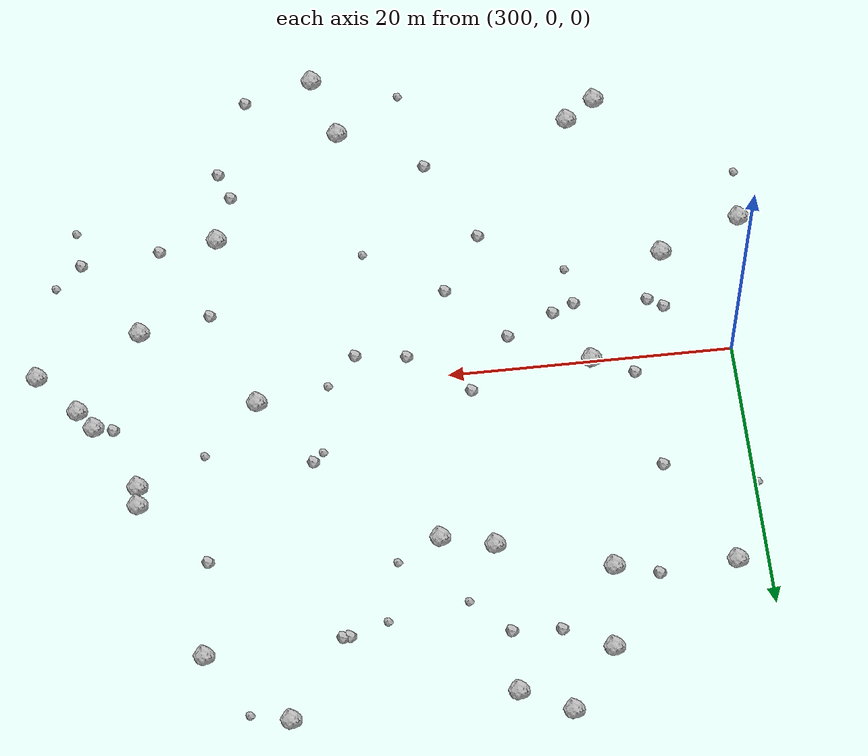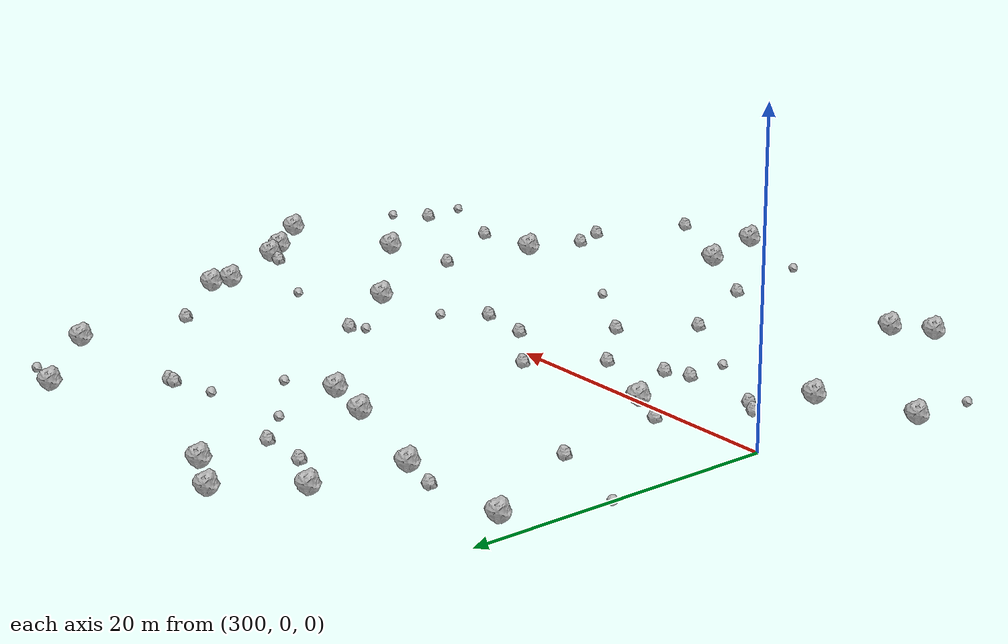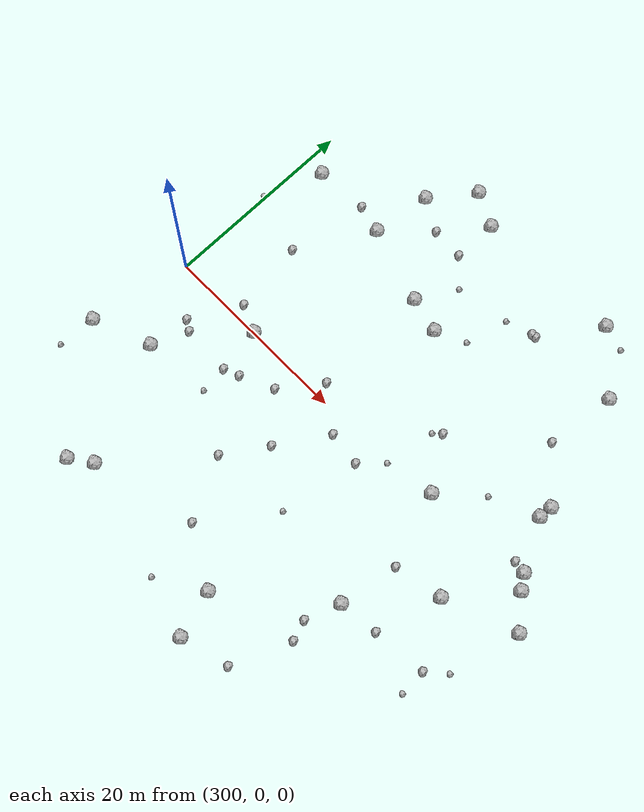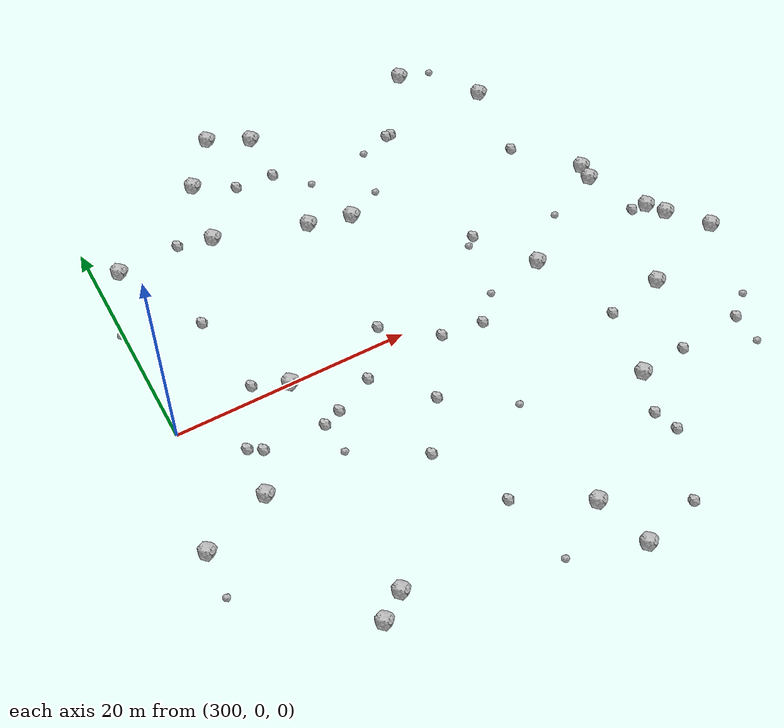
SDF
<sdf version="1.6">
 <world name="default">
  <include><uri>model://sun</uri></include>
  <model name="rock1_8_3">
   <include><uri>model://rock1</uri><pose>314.7072805835428 26.526264472031002 0.5 0 0 0</pose></include>
  </model>
  <model name="rock1_8_4">
   <include><uri>model://rock1</uri><pose>309.0488464742628 -20.079074154106635 0.5 0 0 0</pose></include>
  </model>
  <model name="rock1_8_5">
   <include><uri>model://rock1</uri><pose>297.9085065302448 -10.477501949475464 0.5 0 0 0</pose></include>
  </model>
  <model name="rock1_8_6">
   <include><uri>model://rock1</uri><pose>310.565310774837 16.219416351025806 0.5 0 0 0</pose></include>
  </model>
  <model name="rock1_8_7">
   <include><uri>model://rock1</uri><pose>306.84862966306883 -21.630425281611377 0.5 0 0 0</pose></include>
  </model>
  <model name="rock1_8_8">
   <include><uri>model://rock1</uri><pose>302.1794931654435 16.63511832879074 0.5 0 0 0</pose></include>
  </model>
  <model name="rock1_8_9">
   <include><uri>model://rock1</uri><pose>348.62902496342434 -2.7324277714381715 0.5 0 0 0</pose></include>
  </model>
  <model name="rock1_8_10">
   <include><uri>model://rock1</uri><pose>344.96386813985015 1.694310678832288 0.5 0 0 0</pose></include>
  </model>
  <model name="rock1_8_11">
   <include><uri>model://rock1</uri><pose>333.5367145540504 0.9283303073270801 0.5 0 0 0</pose></include>
  </model>
  <model name="rock1_8_12">
   <include><uri>model://rock1</uri><pose>333.4772944048119 25.208249546477894 0.5 0 0 0</pose></include>
  </model>
  <model name="rock1_8_13">
   <include><uri>model://rock1</uri><pose>311.4077634220408 22.23301070664892 0.5 0 0 0</pose></include>
  </model>
  <model name="rock1_8_14">
   <include><uri>model://rock1</uri><pose>342.2937255138216 6.651047491867004 0.5 0 0 0</pose></include>
  </model>
  <model name="rock1_8_15">
   <include><uri>model://rock1</uri><pose>346.00164672326116 0.2722095538826679 0.5 0 0 0</pose></include>
  </model>
  <model name="rock1_8_16">
   <include><uri>model://rock1</uri><pose>318.40873871747596 13.71491147843507 0.5 0 0 0</pose></include>
  </model>
  <model name="rock1_8_17">
   <include><uri>model://rock1</uri><pose>342.39314842286603 8.071210471412996 0.5 0 0 0</pose></include>
  </model>
  <model name="rock1_8_18">
   <include><uri>model://rock1</uri><pose>322.07496019268115 12.77983767277047 0.5 0 0 0</pose></include>
  </model>
  <model name="rock1_8_19">
   <include><uri>model://rock1</uri><pose>325.71902837793255 -20.688220967275285 0.5 0 0 0</pose></include>
  </model>
  <model name="rock1_8_20">
   <include><uri>model://rock1</uri><pose>338.8345237252693 19.926400288137785 0.5 0 0 0</pose></include>
  </model>
  <model name="rock1_8_21">
   <include><uri>model://rock1</uri><pose>327.1294236131531 -25.453520026073413 0.5 0 0 0</pose></include>
  </model>
  <model name="rock1_8_22">
   <include><uri>model://rock1</uri><pose>341.2270319026654 -5.531960299711088 0.5 0 0 0</pose></include>
  </model>
  <model name="rock1_8_23">
   <include><uri>model://rock1</uri><pose>335.18235691416913 -12.612189019584967 0.5 0 0 0</pose></include>
  </model>
  <model name="rock1_8_24">
   <include><uri>model://rock1</uri><pose>318.17175447265544 24.76644622603306 0.5 0 0 0</pose></include>
  </model>
  <model name="rock1_8_25">
   <include><uri>model://rock1</uri><pose>309.92113188798106 -0.025428955025176947 0.5 0 0 0</pose></include>
  </model>
  <model name="rock1_8_26">
   <include><uri>model://rock1</uri><pose>303.8268982021193 -8.185568786329199 0.5 0 0 0</pose></include>
  </model>
  <model name="rock2_8_0">
   <include><uri>model://rock2</uri><pose>305.34492011654913 -4.480008807566996 0.3 0 0 0</pose></include>
  </model>
  <model name="rock2_8_1">
   <include><uri>model://rock2</uri><pose>328.9467208835016 19.464324607156634 0.3 0 0 0</pose></include>
  </model>
  <model name="rock2_8_2">
   <include><uri>model://rock2</uri><pose>312.13182280698584 -4.095584367604921 0.3 0 0 0</pose></include>
  </model>
  <model name="rock2_8_3">
   <include><uri>model://rock2</uri><pose>343.624076453473 1.9472843519652585 0.3 0 0 0</pose></include>
  </model>
  <model name="rock2_8_4">
   <include><uri>model://rock2</uri><pose>339.2961915444641 -12.133372010996652 0.3 0 0 0</pose></include>
  </model>
  <model name="rock2_8_5">
   <include><uri>model://rock2</uri><pose>318.08295354689375 20.25100516367627 0.3 0 0 0</pose></include>
  </model>
  <model name="rock2_8_6">
   <include><uri>model://rock2</uri><pose>306.1118598043614 8.76099457033466 0.3 0 0 0</pose></include>
  </model>
  <model name="rock2_8_7">
   <include><uri>model://rock2</uri><pose>304.2691178028895 -3.805996799059489 0.3 0 0 0</pose></include>
  </model>
  <model name="rock2_8_8">
   <include><uri>model://rock2</uri><pose>307.0276042669721 1.2889483725889441 0.3 0 0 0</pose></include>
  </model>
  <model name="rock2_8_9">
   <include><uri>model://rock2</uri><pose>334.5797546704554 -18.178093888796933 0.3 0 0 0</pose></include>
  </model>
  <model name="rock2_8_10">
   <include><uri>model://rock2</uri><pose>319.771481318181 -17.301440464262857 0.3 0 0 0</pose></include>
  </model>
  <model name="rock2_8_11">
   <include><uri>model://rock2</uri><pose>319.4865308648666 -6.714877341997166 0.3 0 0 0</pose></include>
  </model>
  <model name="rock2_8_12">
   <include><uri>model://rock2</uri><pose>326.3579195754292 -2.1453605272371803 0.3 0 0 0</pose></include>
  </model>
  <model name="rock2_8_13">
   <include><uri>model://rock2</uri><pose>344.8973794889259 -11.592404212347244 0.3 0 0 0</pose></include>
  </model>
  <model name="rock2_8_14">
   <include><uri>model://rock2</uri><pose>332.0970500313829 -24.104129915305982 0.3 0 0 0</pose></include>
  </model>
  <model name="rock2_8_15">
   <include><uri>model://rock2</uri><pose>315.5199341681727 -2.540234098670389 0.3 0 0 0</pose></include>
  </model>
  <model name="rock2_8_16">
   <include><uri>model://rock2</uri><pose>336.18877285857866 -6.4763011748456805 0.3 0 0 0</pose></include>
  </model>
  <model name="rock2_8_17">
   <include><uri>model://rock2</uri><pose>333.87746320275124 -16.12555669284557 0.3 0 0 0</pose></include>
  </model>
  <model name="rock2_8_18">
   <include><uri>model://rock2</uri><pose>322.7639791094378 -1.6747946375214333 0.3 0 0 0</pose></include>
  </model>
  <model name="rock2_8_19">
   <include><uri>model://rock2</uri><pose>314.6879605468459 20.47807197801103 0.3 0 0 0</pose></include>
  </model>
  <model name="rock2_8_20">
   <include><uri>model://rock2</uri><pose>307.5616355117177 17.005181888360447 0.3 0 0 0</pose></include>
  </model>
  <model name="rock2_8_21">
   <include><uri>model://rock2</uri><pose>337.96471388617374 12.862184162380558 0.3 0 0 0</pose></include>
  </model>
  <model name="rock2_8_22">
   <include><uri>model://rock2</uri><pose>330.07906731099547 5.948466307806562 0.3 0 0 0</pose></include>
  </model>
  <model name="rock2_8_23">
   <include><uri>model://rock2</uri><pose>329.4188403818601 19.48803113406653 0.3 0 0 0</pose></include>
  </model>
  <model name="rock2_8_24">
   <include><uri>model://rock2</uri><pose>316.6247776730783 -11.001956415217578 0.3 0 0 0</pose></include>
  </model>
  <model name="rock2_8_25">
   <include><uri>model://rock2</uri><pose>318.55662014140495 1.512537235855035 0.3 0 0 0</pose></include>
  </model>
  <model name="rock2_8_26">
   <include><uri>model://rock2</uri><pose>310.56602016953275 -4.717569317412067 0.3 0 0 0</pose></include>
  </model>
  <model name="rock3_8_0">
   <include><uri>model://rock3</uri><pose>345.0339306302522 -14.382733616804625 0.2 0 0 0</pose></include>
  </model>
  <model name="rock3_8_1">
   <include><uri>model://rock3</uri><pose>328.43910517847587 0.024845727993827893 0.2 0 0 0</pose></include>
  </model>
  <model name="rock3_8_2">
   <include><uri>model://rock3</uri><pose>297.58651343010047 -14.456230651272302 0.2 0 0 0</pose></include>
  </model>
  <model name="rock3_8_3">
   <include><uri>model://rock3</uri><pose>329.3023567399888 5.203995707460315 0.2 0 0 0</pose></include>
  </model>
  <model name="rock3_8_4">
   <include><uri>model://rock3</uri><pose>326.24370593123064 18.592016009377012 0.2 0 0 0</pose></include>
  </model>
  <model name="rock3_8_5">
   <include><uri>model://rock3</uri><pose>320.96821430677284 -23.589736298779947 0.2 0 0 0</pose></include>
  </model>
  <model name="rock3_8_6">
   <include><uri>model://rock3</uri><pose>325.10406429460636 14.229473509857826 0.2 0 0 0</pose></include>
  </model>
  <model name="rock3_8_7">
   <include><uri>model://rock3</uri><pose>310.8116302530791 -7.635312445649777 0.2 0 0 0</pose></include>
  </model>
  <model name="rock3_8_8">
   <include><uri>model://rock3</uri><pose>346.78448805997283 -9.965056653757426 0.2 0 0 0</pose></include>
  </model>
  <model name="rock3_8_9">
   <include><uri>model://rock3</uri><pose>320.6397989372912 17.68709711653929 0.2 0 0 0</pose></include>
  </model>
  <model name="rock3_8_10">
   <include><uri>model://rock3</uri><pose>336.1252979576168 24.473753802139143 0.2 0 0 0</pose></include>
  </model>
  <model name="rock3_8_11">
   <include><uri>model://rock3</uri><pose>324.9368618964451 -10.404255095182549 0.2 0 0 0</pose></include>
  </model>
  <model name="rock3_8_12">
   <include><uri>model://rock3</uri><pose>299.7988962554984 10.733135428812645 0.2 0 0 0</pose></include>
  </model>
  <model name="rock3_8_13">
   <include><uri>model://rock3</uri><pose>337.4604800025499 4.600861510084442 0.2 0 0 0</pose></include>
  </model>
 </world>
</sdf>
